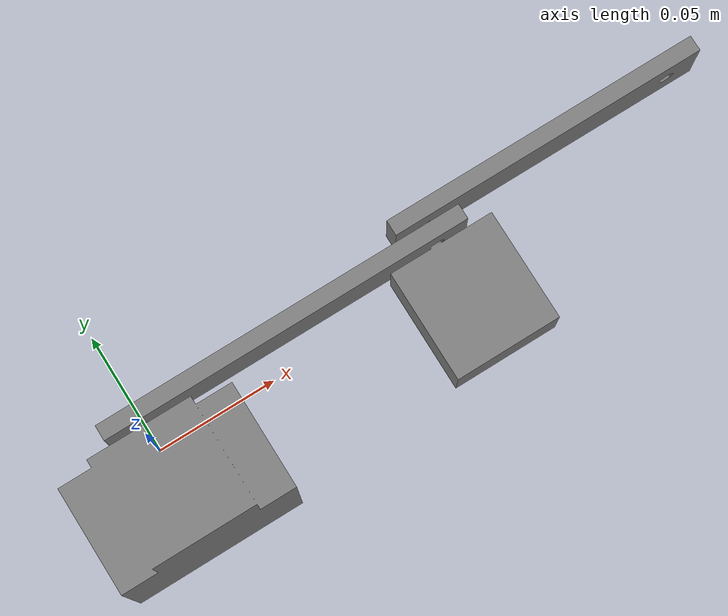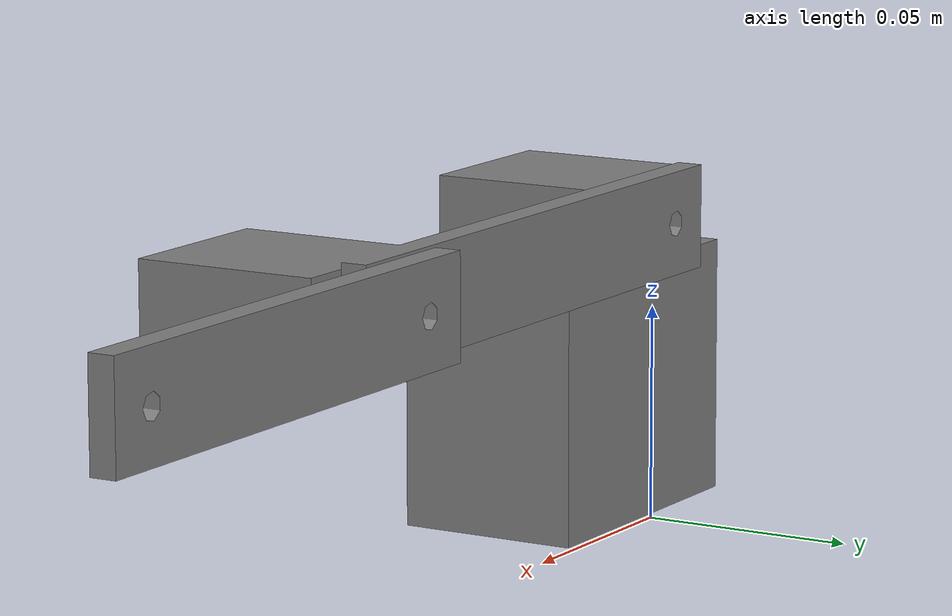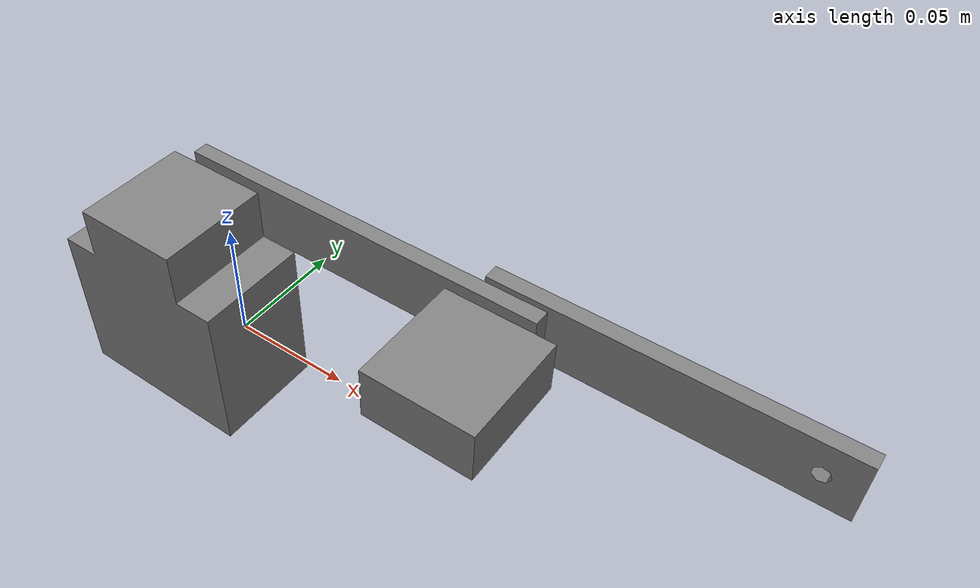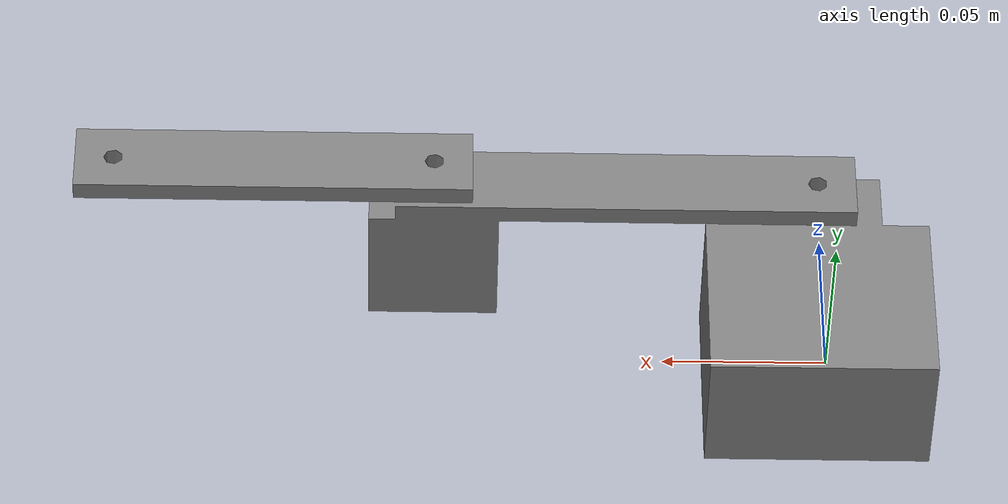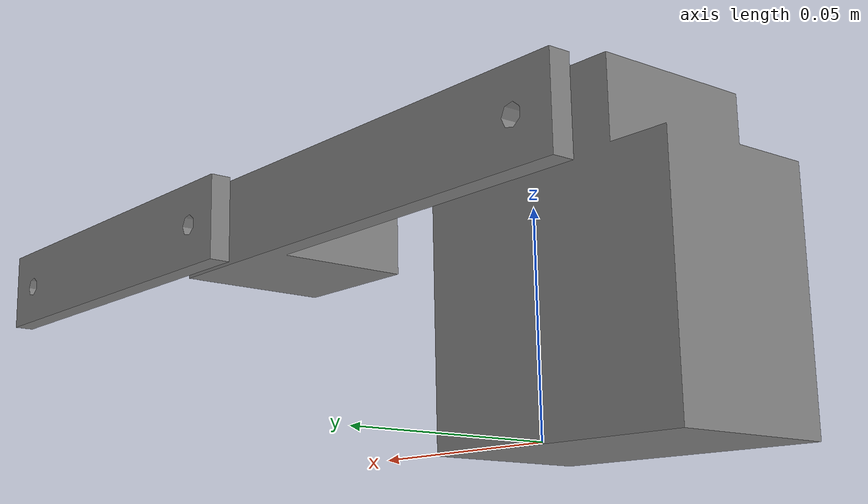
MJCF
<mujoco model="two_link_arm">
  <compiler angle="radian" meshdir="meshes" autolimits="true"/>
  <option timestep="0.001"/>
  <default>
    <default class="visual"><geom type="mesh" contype="0" conaffinity="0" group="2"/></default>
    <default class="collision"><geom type="mesh" group="3"/></default>
  </default>
  <asset>
    <mesh name="base_link_visual" file="base_link_visual.stl"/>
    <mesh name="base_link_base_block_collision" file="base_link_base_block_collision.stl"/>
    <mesh name="base_link_shoulder_servo_collision" file="base_link_shoulder_servo_collision.stl"/>
    <mesh name="link_1_visual" file="link_1_visual.stl"/>
    <mesh name="link_1_link_1_bar_collision" file="link_1_link_1_bar_collision.stl"/>
    <mesh name="link_1_joint_2_servo_collision" file="link_1_joint_2_servo_collision.stl"/>
    <mesh name="link_2_visual" file="link_2_visual.stl"/>
    <mesh name="link_2_link_2_bar_collision" file="link_2_link_2_bar_collision.stl"/>
  </asset>
  <worldbody>
    <body name="base_link">
      <inertial pos="-1.78063488e-19 -0.02345 0.0378720092" mass="0.2784232" fullinertia="0.000181594537 0.000237716853 0.000141524456 1.54201322e-22 -5.04262103e-22 6.89688618e-21"/>
      <geom class="visual" mesh="base_link_visual"/>
      <geom class="collision" mesh="base_link_base_block_collision"/>
      <geom class="collision" mesh="base_link_shoulder_servo_collision"/>
      <body name="link_1" pos="0 0 0.06985" quat="0.707106781 -0.707106781 0 0">
        <inertial pos="0.101100027 6.24080472e-20 -0.0151182619" mass="0.0802919179" fullinertia="2.36436901e-05 0.000133509736 0.000115890058 4.93094698e-23 2.74947356e-05 -4.07021942e-23"/>
        <joint name="joint_1" type="hinge" axis="0 0 1" range="-1.57079633 1.57079633" damping="0.05" actuatorfrcrange="-1.0787315 1.0787315"/>
        <geom class="visual" mesh="link_1_visual"/>
        <geom class="collision" mesh="link_1_link_1_bar_collision"/>
        <geom class="collision" mesh="link_1_joint_2_servo_collision"/>
        <body name="link_2" pos="0.12 0 0.008" quat="1 0 0 0">
          <inertial pos="0.05 1.42922998e-19 0.003" mass="0.0217207179" fullinertia="1.12700465e-06 2.73829754e-05 2.83796558e-05 -3.86972332e-23 0 -2.6324385e-27"/>
          <joint name="joint_2" type="hinge" axis="0 0 1" range="-1.57079633 1.57079633" damping="0.05" actuatorfrcrange="-1.0787315 1.0787315"/>
          <geom class="visual" mesh="link_2_visual"/>
          <geom class="collision" mesh="link_2_link_2_bar_collision"/>
        </body>
      </body>
    </body>
  </worldbody>
  <actuator>
    <position name="joint_1_servo" joint="joint_1" kp="12.3613524" forcerange="-1.0787315 1.0787315" ctrlrange="-1.57079633 1.57079633"/>
    <position name="joint_2_servo" joint="joint_2" kp="12.3613524" forcerange="-1.0787315 1.0787315" ctrlrange="-1.57079633 1.57079633"/>
  </actuator>
  <keyframe>
    <key name="home" qpos="0 0" ctrl="0 0"/>
  </keyframe>
</mujoco>
